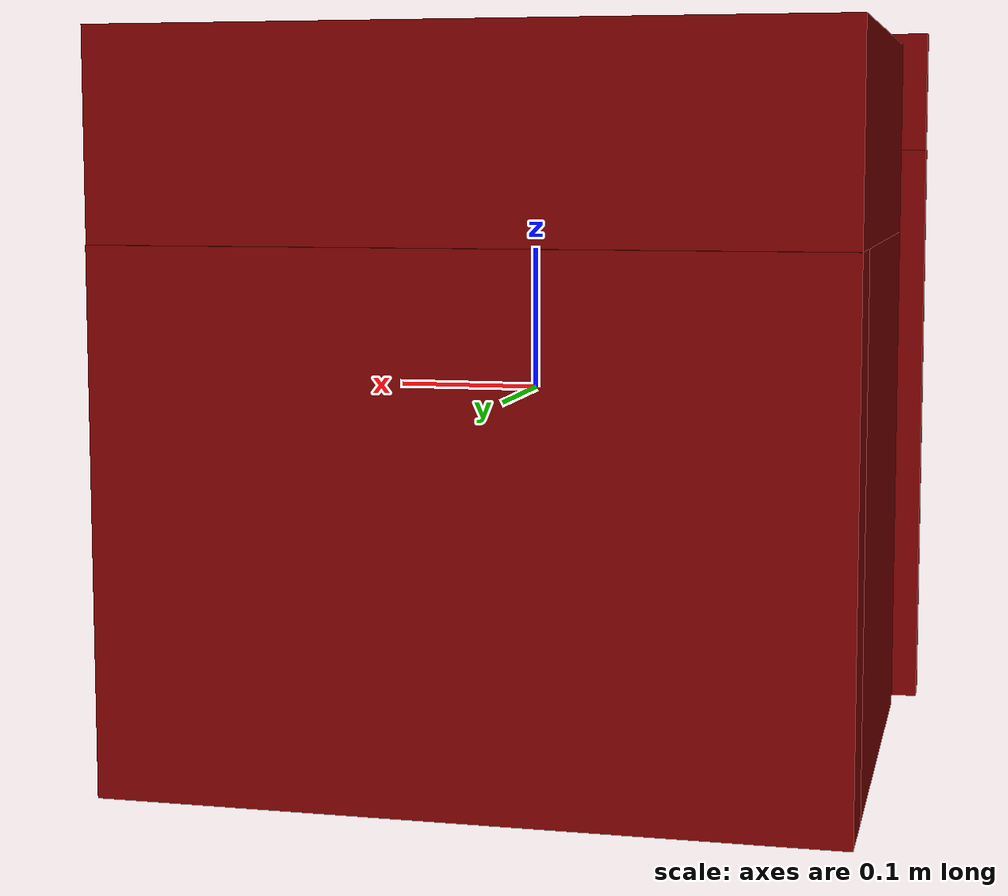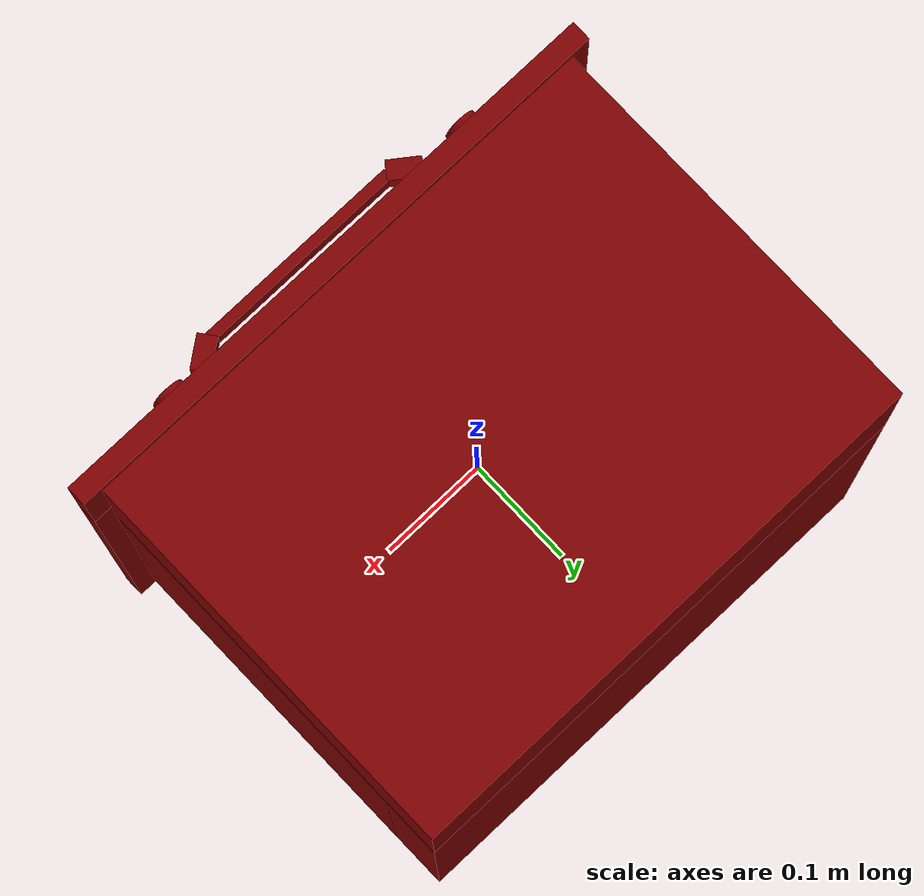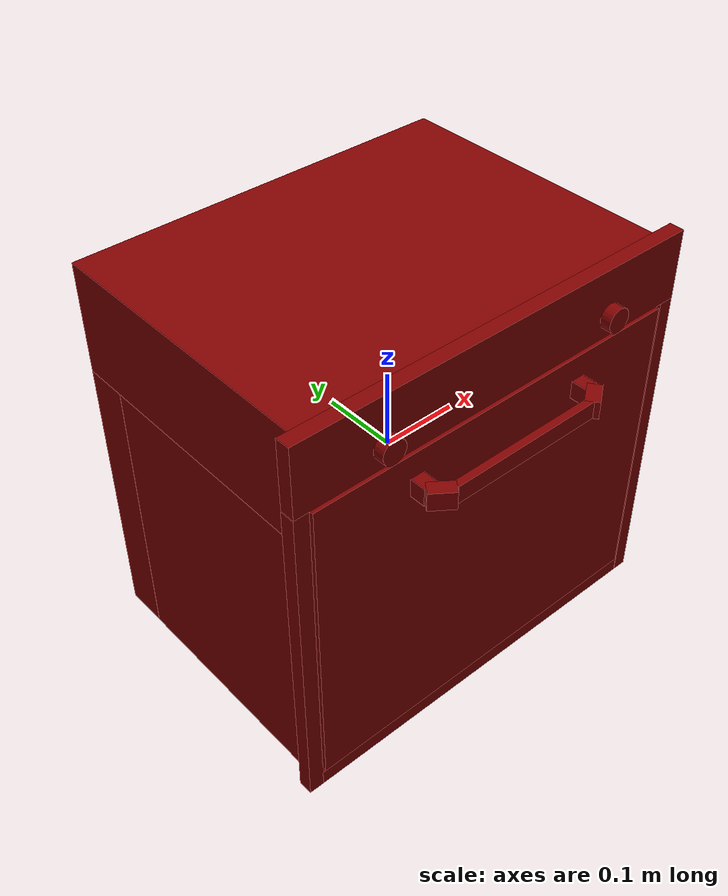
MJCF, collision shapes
<mujoco model="model">
  <compiler angle="radian"/>
  <asset>
    <mesh file="visuals/Body001.obj" name="Body001_vis"/>
    <mesh file="visuals/Door001.obj" name="Door001_vis"/>
    <mesh file="visuals/Knob001.obj" name="Knob001_vis"/>
    <mesh file="visuals/Knob002.obj" name="Knob002_vis"/>
    <mesh file="visuals/Shelf001.obj" name="Shelf001_vis"/>
    <mesh file="visuals/Shelf002.obj" name="Shelf002_vis"/>
    <texture file="visuals/T_BC001.png" name="Body001_material" type="2d"/>
    <material name="Body001_material" rgba="1 1 1 1.0" texture="Body001_material" shininess="0.4472135901451111" specular="0.3103448502657381"/>
    <texture file="visuals/T_BC001.png" name="Door001_material" type="2d"/>
    <material name="Door001_material" rgba="1 1 1 1.0" texture="Door001_material" shininess="0.4472135901451111" specular="0.3103448502657381"/>
    <texture file="visuals/T_BC001.png" name="Knob001_material" type="2d"/>
    <material name="Knob001_material" rgba="1 1 1 1.0" texture="Knob001_material" shininess="0.4472135901451111" specular="0.3103448502657381"/>
    <texture file="visuals/T_BC001.png" name="Knob002_material" type="2d"/>
    <material name="Knob002_material" rgba="1 1 1 1.0" texture="Knob002_material" shininess="0.4472135901451111" specular="0.3103448502657381"/>
    <texture file="visuals/T_BC001.png" name="Shelf001_material" type="2d"/>
    <material name="Shelf001_material" rgba="1 1 1 1.0" texture="Shelf001_material" shininess="0.4472135901451111" specular="0.3103448502657381"/>
    <texture file="visuals/T_BC001.png" name="Shelf002_material" type="2d"/>
    <material name="Shelf002_material" rgba="1 1 1 1.0" texture="Shelf002_material" shininess="0.4472135901451111" specular="0.3103448502657381"/>
  </asset>
  <default>
    <default class="visual">
      <geom conaffinity="0" contype="0" group="1" type="mesh"/>
    </default>
    <default class="collision">
      <geom group="0" rgba="0.5 0 0 0.5"/>
    </default>
    <default class="spawn">
      <geom group="0" rgba="1 1 1 0.5" contype="0" conaffinity="0"/>
      <site group="0" rgba="1 1 1 0.5"/>
    </default>
    <default class="region">
      <geom group="1" conaffinity="0" contype="0" rgba="0 1 0 0"/>
    </default>
  </default>
  <worldbody>
    <body>
      <body name="object">
        <geom mesh="Body001_vis" type="mesh" solimp="0.998 0.998 0.001" solref="0.001 1" density="100" friction="0.95 0.3 0.1" class="visual" material="Body001_material"/>
        <geom class="collision" type="box" pos="0.00041502993553876877 0.1850886046886444 -0.07417420297861099" size="0.24796883761882782 0.027711013332009315 0.18270952999591827" quat="1.0 0.0 0.0 0.0"/>
        <geom class="collision" type="box" pos="0.0002220855822088197 0.029538020491600037 0.178770050406456" size="0.24778611958026886 0.18326158821582794 0.07008650153875351" quat="1.0 0.0 0.0 0.0"/>
        <geom class="collision" type="box" pos="-0.23554445803165436 0.0013668909668922424 -0.07417420297861099" size="0.012009347788989544 0.15575292706489563 0.18270952999591827" quat="1.0 0.0 0.0 0.0"/>
        <geom class="collision" type="box" pos="0.23673385381698608 0.0013668909668922424 -0.07417420297861099" size="0.011723509058356285 0.15575292706489563 0.18270952999591827" quat="1.0 0.0 0.0 0.0"/>
        <geom class="collision" type="box" pos="0.00020600871357601136 -0.16263379156589508 0.21365806460380554" size="0.2658253312110901 0.00906728208065033 0.0432007722556591" quat="1.0 0.0 0.0 0.0"/>
        <geom class="collision" type="box" pos="0.2567294239997864 -0.16263379156589508 -0.03999689966440201" size="0.009301918558776379 0.00906728208065033 0.21029488742351532" quat="1.0 0.0 0.0 0.0"/>
        <geom class="collision" type="box" pos="-0.2567165195941925 -0.16263379156589508 -0.03999689966440201" size="0.009301918558776379 0.00906728208065033 0.21029488742351532" quat="1.0 0.0 0.0 0.0"/>
        <geom class="collision" type="box" pos="0.0006272203754633665 -0.0031186528503894806 -0.2241116762161255" size="0.22433501482009888 0.1603754311800003 0.034626659005880356" quat="1.0 0.0 0.0 0.0"/>
        <geom class="collision" type="box" pos="-0.0006274860934354365 -0.16263379156589508 -0.24046172201633453" size="0.24722301959991455 0.00906728208065033 0.009830057621002197" quat="1.0 0.0 0.0 0.0"/>
        <geom class="collision" type="box" pos="-0.21839486062526703 0.003471721662208438 -0.04267561808228493" size="0.00432288134470582 0.13912615180015564 0.10793807357549667" quat="1.0 0.0 0.0 0.0"/>
        <geom class="collision" type="box" pos="0.21975018084049225 0.003471721662208438 -0.04267561808228493" size="0.00432288134470582 0.13912615180015564 0.10793807357549667" quat="1.0 0.0 0.0 0.0"/>
        <body name="Door001">
          <joint axis="1.0 0.0 0.0" pos="0.00011162459850311279 -0.17144104838371277 -0.22798120975494385" limited="true" name="Door001_joint" range="0.0 1.15" type="hinge" damping="5" frictionloss="1" armature=".01" stiffness="0.05" springref="-1"/>
          <geom mesh="Door001_vis" type="mesh" solimp="0.998 0.998 0.001" solref="0.001 1" density="100" friction="0.95 0.3 0.1" class="visual" material="Door001_material"/>
          <geom class="collision" type="box" pos="0.00012227712431922555 -0.16908329725265503 -0.03085756115615368" size="0.2441321760416031 0.003428682452067733 0.19721072912216187" quat="1.0 0.0 0.0 0.0"/>
          <geom class="collision" type="box" pos="0.0008243577904067934 -0.2066061645746231 0.1251366287469864" size="0.09818431735038757 0.0047048102132976055 0.011084760539233685" quat="1.0 0.0 0.0 0.0"/>
          <geom class="collision" type="box" pos="-0.11562653630971909 -0.18209116160869598 0.1251366287469864" size="0.008663634769618511 0.009878952987492085 0.011084760539233685" quat="1.0 0.0 0.0 0.0"/>
          <geom class="collision" type="box" pos="-0.10972652584314346 -0.20057404041290283 0.12512733042240143" size="0.008663634769618511 0.015218540094792843 0.011240941472351551" quat="0.8923476338386536 0.0 0.0 0.45134878158569336"/>
          <geom class="collision" type="box" pos="0.10966231673955917 -0.20057404041290283 0.12512733042240143" size="0.008663634769618511 0.015218540094792843 0.011240941472351551" quat="0.8923476934432983 0.0 -0.0 -0.4513486623764038"/>
          <geom class="collision" type="box" pos="0.1155623272061348 -0.18209116160869598 0.1251366287469864" size="0.008663634769618511 0.009878952987492085 0.011084760539233685" quat="1.0 0.0 0.0 0.0"/>
        </body>
        <body name="Knob001">
          <joint axis="0.0 1.0 0.0" pos="-0.15610352158546448 -0.17779646813869476 0.1969929337501526" limited="true" name="Knob001_joint" range="0.0 3.961897402027128" type="hinge" damping="0.05" armature="0.001" springref="-0.01"/>
          <geom mesh="Knob001_vis" type="mesh" solimp="0.998 0.998 0.001" solref="0.001 1" density="100" friction="0.95 0.3 0.1" class="visual" material="Knob001_material"/>
          <geom class="collision" type="cylinder" pos="-0.15616090595722198 -0.17839783430099487 0.19705532491207123" size="0.014906497672200203 0.006695203948765993" quat="0.7071067094802856 0.7071068286895752 0.0 0.0"/>
        </body>
        <body name="Knob002">
          <joint axis="0.0 1.0 0.0" pos="0.15681278705596924 -0.17779646813869476 0.1969929337501526" limited="true" name="Knob002_joint" range="0.0 3.2288591161895095" type="hinge" damping="0.05" armature="0.001" springref="-0.01"/>
          <geom mesh="Knob002_vis" type="mesh" solimp="0.998 0.998 0.001" solref="0.001 1" density="100" friction="0.95 0.3 0.1" class="visual" material="Knob002_material"/>
          <geom class="collision" type="cylinder" pos="0.15701091289520264 -0.17839783430099487 0.19705532491207123" size="0.014906497672200203 0.006695203948765993" quat="0.7071067094802856 0.7071068286895752 0.0 0.0"/>
        </body>
        <body name="Shelf001">
          <joint axis="0.0 -1.0 0.0" pos="0.0009681954979896545 0.0033347532153129578 -0.0017881738021969795" limited="true" name="Shelf001_joint" range="0.0 0.25" type="slide" damping="1" frictionloss="1" armature=".01" stiffness="0.05"/>
          <geom mesh="Shelf001_vis" type="mesh" solimp="0.998 0.998 0.001" solref="0.001 1" density="100" friction="0.95 0.3 0.1" class="visual" material="Shelf001_material"/>
          <geom class="collision" type="box" pos="0.0009635542519390583 0.0028248464222997427 -0.001407228410243988" size="0.21384580433368683 0.1545707881450653 0.003668802324682474" quat="1.0 0.0 0.0 0.0"/>
        </body>
        <body name="Shelf002">
          <joint axis="0.0 -1.0 0.0" pos="0.0008723735809326172 0.0033347681164741516 -0.09002819657325745" limited="true" name="Shelf002_joint" range="0.0 0.25" type="slide" damping="1" frictionloss="1" armature=".01" stiffness="0.05"/>
          <geom mesh="Shelf002_vis" type="mesh" solimp="0.998 0.998 0.001" solref="0.001 1" density="100" friction="0.95 0.3 0.1" class="visual" material="Shelf002_material"/>
          <geom class="collision" type="box" pos="0.0009487515198998153 0.0018891487270593643 -0.1041354387998581" size="0.2069123536348343 0.15240392088890076 0.004841858986765146" quat="1.0 0.0 0.0 0.0"/>
          <geom class="collision" type="box" pos="0.20724079012870789 0.001889153616502881 -0.08814318478107452" size="0.002178757917135954 0.15240392088890076 0.011319296434521675" quat="1.0 0.0 0.0 0.0"/>
          <geom class="collision" type="box" pos="0.21011781692504883 0.001889153616502881 -0.0737205296754837" size="0.0037527820095419884 0.15240392088890076 0.0021625864319503307" quat="1.0 0.0 0.0 0.0"/>
          <geom class="collision" type="box" pos="-0.20882469415664673 0.001889153616502881 -0.0737205296754837" size="0.004202141426503658 0.15240392088890076 0.0021625864319503307" quat="1.0 0.0 0.0 0.0"/>
          <geom class="collision" type="box" pos="-0.2054983228445053 0.001889153616502881 -0.08814318478107452" size="0.002178757917135954 0.15240392088890076 0.011319296434521675" quat="1.0 0.0 0.0 0.0"/>
        </body>
        <geom class="region" name="reg_main" type="box" pos="0.0 0.01943117380142212 0.0" size="0.2656000256538391 0.19161856174468994 0.2562156915664673"/>
        <geom class="region" name="reg_int" type="box" pos="0.0015995055437088013 0.007976517081260681 -0.04140589013695717" size="0.21971093118190765 0.15961946547031403 0.14647294208407402"/>
      </body>
    </body>
  </worldbody>
  <actuator>
    <motor name="Door001_joint_actuator" joint="Door001_joint" gear="50"/>
    <motor name="Knob001_joint_actuator" joint="Knob001_joint" gear="50"/>
    <motor name="Knob002_joint_actuator" joint="Knob002_joint" gear="50"/>
    <motor name="Shelf001_joint_actuator" joint="Shelf001_joint" gear="50"/>
    <motor name="Shelf002_joint_actuator" joint="Shelf002_joint" gear="50"/>
  </actuator>
</mujoco>
